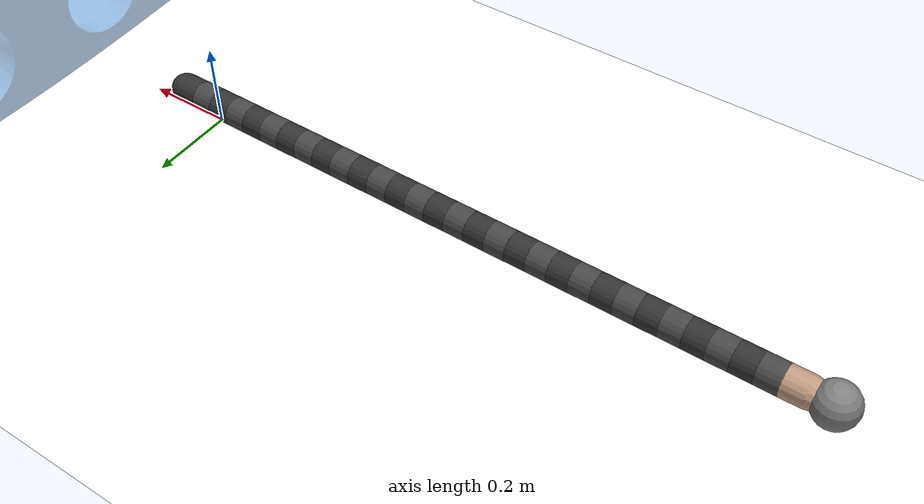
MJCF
<mujoco>
    <!-- === Configuration parameter stuff, default values === -->
    <default>
        <default class="position">
            <position ctrllimited="true" forcelimited="false" />
        </default>
        <default class="geom0">
            <geom conaffinity="0" contype="1" friction="0 0.0 0.0" margin="0.001" rgba="0.75 0.6 0.5 1" solimp="0.95 0.95 0.01" solref="0.008 1" />
        </default>
        <default class="link">
            <joint armature="0.1" damping="5" limited="true" stiffness="0" />
        </default>
    </default>
    <!-- === Physical robot definitions === -->
    <worldbody>
        <body pos="0 1.00 0.50" euler="90.00 -90.00 0">
            <geom type="mesh" mesh="0_STLS_dir/CRL_Wing.stl" rgba="0.2 0.5 0.8 0.5" />
        </body>
        <light pos="0 0 10" dir="0 0 -1" castshadow="false" />
    <geom type="plane" size="100 100 0.1" friction="0 0 0" rgba="0.984 0.984 0.984 1" />
        <body name="base" pos="-1.5 0 0.05">
            <geom size="0.05" type="sphere" />
            <joint axis="1 0 0" name="sphere_velocity" pos="0 0 0" range="-200 200" type="slide" />
            <body name="base_link" pos="0.05 0 0">
                <geom class="geom0" fromto="0 0 0 0.05 0 0" size="0.035" type="capsule" />
                <joint axis="0 0 1" class="link" name="base_joint" pos="0 0 0" range="-40.5 40.5" type="hinge" />
                <body name="link_0" pos="0.05 0 0">
                    <geom fromto="0 0 0 0.05 0 0" size="0.035" type="capsule" rgba="0.274 0.274 0.274 1" friction="0 0 0" />
                    <joint axis="0 0 1" class="link" name="joint_0" pos="0 0 0" range="-40.5 40.5" type="hinge" stiffness="20" />
                    <body name="link_1" pos="0.05 0 0">
                        <geom fromto="0 0 0 0.05 0 0" size="0.035" type="capsule" rgba="0.196 0.196 0.196 1" friction="0 0 0" />
                        <joint axis="0 0 1" class="link" name="joint_1" pos="0 0 0" range="-40.5 40.5" type="hinge" stiffness="20" />
                        <body name="link_2" pos="0.05 0 0">
                            <geom fromto="0 0 0 0.05 0 0" size="0.035" type="capsule" rgba="0.274 0.274 0.274 1" friction="0 0 0" />
                            <joint axis="0 0 1" class="link" name="joint_2" pos="0 0 0" range="-40.5 40.5" type="hinge" stiffness="20" />
                            <body name="link_3" pos="0.05 0 0">
                                <geom fromto="0 0 0 0.05 0 0" size="0.035" type="capsule" rgba="0.196 0.196 0.196 1" friction="0 0 0" />
                                <joint axis="0 0 1" class="link" name="joint_3" pos="0 0 0" range="-40.5 40.5" type="hinge" stiffness="20" />
                                <body name="link_4" pos="0.05 0 0">
                                    <geom fromto="0 0 0 0.05 0 0" size="0.035" type="capsule" rgba="0.274 0.274 0.274 1" friction="0 0 0" />
                                    <joint axis="0 0 1" class="link" name="joint_4" pos="0 0 0" range="-40.5 40.5" type="hinge" stiffness="20" />
                                    <body name="link_5" pos="0.05 0 0">
                                        <geom fromto="0 0 0 0.05 0 0" size="0.035" type="capsule" rgba="0.196 0.196 0.196 1" friction="0 0 0" />
                                        <joint axis="0 0 1" class="link" name="joint_5" pos="0 0 0" range="-40.5 40.5" type="hinge" stiffness="20" />
                                        <body name="link_6" pos="0.05 0 0">
                                            <geom fromto="0 0 0 0.05 0 0" size="0.035" type="capsule" rgba="0.274 0.274 0.274 1" friction="0 0 0" />
                                            <joint axis="0 0 1" class="link" name="joint_6" pos="0 0 0" range="-40.5 40.5" type="hinge" stiffness="20" />
                                            <body name="link_7" pos="0.05 0 0">
                                                <geom fromto="0 0 0 0.05 0 0" size="0.035" type="capsule" rgba="0.196 0.196 0.196 1" friction="0 0 0" />
                                                <joint axis="0 0 1" class="link" name="joint_7" pos="0 0 0" range="-40.5 40.5" type="hinge" stiffness="20" />
                                                <body name="link_8" pos="0.05 0 0">
                                                    <geom fromto="0 0 0 0.05 0 0" size="0.035" type="capsule" rgba="0.274 0.274 0.274 1" friction="0 0 0" />
                                                    <joint axis="0 0 1" class="link" name="joint_8" pos="0 0 0" range="-40.5 40.5" type="hinge" stiffness="20" />
                                                    <body name="link_9" pos="0.05 0 0">
                                                        <geom fromto="0 0 0 0.05 0 0" size="0.035" type="capsule" rgba="0.196 0.196 0.196 1" friction="0 0 0" />
                                                        <joint axis="0 0 1" class="link" name="joint_9" pos="0 0 0" range="-40.5 40.5" type="hinge" stiffness="20" />
                                                        <body name="link_10" pos="0.05 0 0">
                                                            <geom fromto="0 0 0 0.05 0 0" size="0.035" type="capsule" rgba="0.274 0.274 0.274 1" friction="0 0 0" />
                                                            <joint axis="0 0 1" class="link" name="joint_10" pos="0 0 0" range="-40.5 40.5" type="hinge" stiffness="20" />
                                                            <body name="link_11" pos="0.05 0 0">
                                                                <geom fromto="0 0 0 0.05 0 0" size="0.035" type="capsule" rgba="0.196 0.196 0.196 1" friction="0 0 0" />
                                                                <joint axis="0 0 1" class="link" name="joint_11" pos="0 0 0" range="-40.5 40.5" type="hinge" stiffness="20" />
                                                                <body name="link_12" pos="0.05 0 0">
                                                                    <geom fromto="0 0 0 0.05 0 0" size="0.035" type="capsule" rgba="0.274 0.274 0.274 1" friction="0 0 0" />
                                                                    <joint axis="0 0 1" class="link" name="joint_12" pos="0 0 0" range="-40.5 40.5" type="hinge" stiffness="20" />
                                                                    <body name="link_13" pos="0.05 0 0">
                                                                        <geom fromto="0 0 0 0.05 0 0" size="0.035" type="capsule" rgba="0.196 0.196 0.196 1" friction="0 0 0" />
                                                                        <joint axis="0 0 1" class="link" name="joint_13" pos="0 0 0" range="-40.5 40.5" type="hinge" stiffness="20" />
                                                                        <body name="link_14" pos="0.05 0 0">
                                                                            <geom fromto="0 0 0 0.05 0 0" size="0.035" type="capsule" rgba="0.274 0.274 0.274 1" friction="0 0 0" />
                                                                            <joint axis="0 0 1" class="link" name="joint_14" pos="0 0 0" range="-40.5 40.5" type="hinge" stiffness="20" />
                                                                            <body name="link_15" pos="0.05 0 0">
                                                                                <geom fromto="0 0 0 0.05 0 0" size="0.035" type="capsule" rgba="0.196 0.196 0.196 1" friction="0 0 0" />
                                                                                <joint axis="0 0 1" class="link" name="joint_15" pos="0 0 0" range="-40.5 40.5" type="hinge" stiffness="20" />
                                                                                <body name="link_16" pos="0.05 0 0">
                                                                                    <geom fromto="0 0 0 0.05 0 0" size="0.035" type="capsule" rgba="0.274 0.274 0.274 1" friction="0 0 0" />
                                                                                    <joint axis="0 0 1" class="link" name="joint_16" pos="0 0 0" range="-40.5 40.5" type="hinge" stiffness="20" />
                                                                                    <body name="link_17" pos="0.05 0 0">
                                                                                        <geom fromto="0 0 0 0.05 0 0" size="0.035" type="capsule" rgba="0.196 0.196 0.196 1" friction="0 0 0" />
                                                                                        <joint axis="0 0 1" class="link" name="joint_17" pos="0 0 0" range="-40.5 40.5" type="hinge" stiffness="20" />
                                                                                        <body name="link_18" pos="0.05 0 0">
                                                                                            <geom fromto="0 0 0 0.05 0 0" size="0.035" type="capsule" rgba="0.274 0.274 0.274 1" friction="0 0 0" />
                                                                                            <joint axis="0 0 1" class="link" name="joint_18" pos="0 0 0" range="-40.5 40.5" type="hinge" stiffness="20" />
                                                                                            <body name="link_19" pos="0.05 0 0">
                                                                                                <geom fromto="0 0 0 0.05 0 0" size="0.035" type="capsule" rgba="0.196 0.196 0.196 1" friction="0 0 0" />
                                                                                                <joint axis="0 0 1" class="link" name="joint_19" pos="0 0 0" range="-40.5 40.5" type="hinge" stiffness="20" />
                                                                                                <body name="link_20" pos="0.05 0 0">
                                                                                                    <geom fromto="0 0 0 0.05 0 0" size="0.035" type="capsule" rgba="0.274 0.274 0.274 1" friction="0 0 0" />
                                                                                                    <joint axis="0 0 1" class="link" name="joint_20" pos="0 0 0" range="-40.5 40.5" type="hinge" stiffness="20" />
                                                                                                    <body name="link_21" pos="0.05 0 0">
                                                                                                        <geom fromto="0 0 0 0.05 0 0" size="0.035" type="capsule" rgba="0.196 0.196 0.196 1" friction="0 0 0" />
                                                                                                        <joint axis="0 0 1" class="link" name="joint_21" pos="0 0 0" range="-40.5 40.5" type="hinge" stiffness="20" />
                                                                                                        <body name="link_22" pos="0.05 0 0">
                                                                                                            <geom fromto="0 0 0 0.05 0 0" size="0.035" type="capsule" rgba="0.274 0.274 0.274 1" friction="0 0 0" />
                                                                                                            <joint axis="0 0 1" class="link" name="joint_22" pos="0 0 0" range="-40.5 40.5" type="hinge" stiffness="20" />
                                                                                                            <body name="link_23" pos="0.05 0 0">
                                                                                                                <geom fromto="0 0 0 0.05 0 0" size="0.035" type="capsule" rgba="0.196 0.196 0.196 1" friction="0 0 0" />
                                                                                                                <joint axis="0 0 1" class="link" name="joint_23" pos="0 0 0" range="-40.5 40.5" type="hinge" stiffness="20" />
                                                                                                                <body name="link_24" pos="0.05 0 0">
                                                                                                                    <geom fromto="0 0 0 0.05 0 0" size="0.035" type="capsule" rgba="0.274 0.274 0.274 1" friction="0 0 0" />
                                                                                                                    <joint axis="0 0 1" class="link" name="joint_24" pos="0 0 0" range="-40.5 40.5" type="hinge" stiffness="20" />
                                                                                                                    <body name="link_25" pos="0.05 0 0">
                                                                                                                        <geom fromto="0 0 0 0.05 0 0" size="0.035" type="capsule" rgba="0.196 0.196 0.196 1" friction="0 0 0" />
                                                                                                                        <joint axis="0 0 1" class="link" name="joint_25" pos="0 0 0" range="-40.5 40.5" type="hinge" stiffness="20" />
                                                                                                                        <body name="link_26" pos="0.05 0 0">
                                                                                                                            <geom fromto="0 0 0 0.05 0 0" size="0.035" type="capsule" rgba="0.274 0.274 0.274 1" friction="0 0 0" />
                                                                                                                            <joint axis="0 0 1" class="link" name="joint_26" pos="0 0 0" range="-40.5 40.5" type="hinge" stiffness="20" />
                                                                                                                            <body name="link_27" pos="0.05 0 0">
                                                                                                                                <geom fromto="0 0 0 0.05 0 0" size="0.035" type="capsule" rgba="0.196 0.196 0.196 1" friction="0 0 0" />
                                                                                                                                <joint axis="0 0 1" class="link" name="joint_27" pos="0 0 0" range="-40.5 40.5" type="hinge" stiffness="20" />
                                                                                                                                <body name="link_28" pos="0.05 0 0">
                                                                                                                                    <geom fromto="0 0 0 0.05 0 0" size="0.035" type="capsule" rgba="0.274 0.274 0.274 1" friction="0 0 0" />
                                                                                                                                    <joint axis="0 0 1" class="link" name="joint_28" pos="0 0 0" range="-40.5 40.5" type="hinge" stiffness="20" />
                                                                                                                                    <body name="link_29" pos="0.05 0 0">
                                                                                                                                        <geom fromto="0 0 0 0.05 0 0" size="0.035" type="capsule" rgba="0.196 0.196 0.196 1" friction="0 0 0" />
                                                                                                                                        <joint axis="0 0 1" class="link" name="joint_29" pos="0 0 0" range="-40.5 40.5" type="hinge" stiffness="20" />
                                                                                                                                    </body>
                                                                                                                                </body>
                                                                                                                            </body>
                                                                                                                        </body>
                                                                                                                    </body>
                                                                                                                </body>
                                                                                                            </body>
                                                                                                        </body>
                                                                                                    </body>
                                                                                                </body>
                                                                                            </body>
                                                                                        </body>
                                                                                    </body>
                                                                                </body>
                                                                            </body>
                                                                        </body>
                                                                    </body>
                                                                </body>
                                                            </body>
                                                        </body>
                                                    </body>
                                                </body>
                                            </body>
                                        </body>
                                    </body>
                                </body>
                            </body>
                        </body>
                    </body>
                </body>
            </body>
        </body>
    </worldbody>
    <asset>
        <mesh name="0_STLS_dir/CRL_Wing.stl" content_type="model/stl" file="STLS_dir/CRL_Wing.stl" scale="0.005 0.005 0.005" />
    </asset>
    <actuator>
        <velocity ctrlrange="-4 4" joint="sphere_velocity" name="sphere_velocity_act" />
        <motor class="position" ctrlrange="-40.5 40.5" joint="base_joint" name="act_base_joint" />
        <motor class="position" ctrlrange="-40.5 40.5" joint="joint_0" name="act_joint_0" />
        <motor class="position" ctrlrange="-40.5 40.5" joint="joint_1" name="act_joint_1" />
        <motor class="position" ctrlrange="-40.5 40.5" joint="joint_2" name="act_joint_2" />
        <motor class="position" ctrlrange="-40.5 40.5" joint="joint_3" name="act_joint_3" />
        <motor class="position" ctrlrange="-40.5 40.5" joint="joint_4" name="act_joint_4" />
        <motor class="position" ctrlrange="-40.5 40.5" joint="joint_5" name="act_joint_5" />
        <motor class="position" ctrlrange="-40.5 40.5" joint="joint_6" name="act_joint_6" />
        <motor class="position" ctrlrange="-40.5 40.5" joint="joint_7" name="act_joint_7" />
        <motor class="position" ctrlrange="-40.5 40.5" joint="joint_8" name="act_joint_8" />
        <motor class="position" ctrlrange="-40.5 40.5" joint="joint_9" name="act_joint_9" />
        <motor class="position" ctrlrange="-40.5 40.5" joint="joint_10" name="act_joint_10" />
        <motor class="position" ctrlrange="-40.5 40.5" joint="joint_11" name="act_joint_11" />
        <motor class="position" ctrlrange="-40.5 40.5" joint="joint_12" name="act_joint_12" />
        <motor class="position" ctrlrange="-40.5 40.5" joint="joint_13" name="act_joint_13" />
        <motor class="position" ctrlrange="-40.5 40.5" joint="joint_14" name="act_joint_14" />
        <motor class="position" ctrlrange="-40.5 40.5" joint="joint_15" name="act_joint_15" />
        <motor class="position" ctrlrange="-40.5 40.5" joint="joint_16" name="act_joint_16" />
        <motor class="position" ctrlrange="-40.5 40.5" joint="joint_17" name="act_joint_17" />
        <motor class="position" ctrlrange="-40.5 40.5" joint="joint_18" name="act_joint_18" />
        <motor class="position" ctrlrange="-40.5 40.5" joint="joint_19" name="act_joint_19" />
        <motor class="position" ctrlrange="-40.5 40.5" joint="joint_20" name="act_joint_20" />
        <motor class="position" ctrlrange="-40.5 40.5" joint="joint_21" name="act_joint_21" />
        <motor class="position" ctrlrange="-40.5 40.5" joint="joint_22" name="act_joint_22" />
        <motor class="position" ctrlrange="-40.5 40.5" joint="joint_23" name="act_joint_23" />
        <motor class="position" ctrlrange="-40.5 40.5" joint="joint_24" name="act_joint_24" />
        <motor class="position" ctrlrange="-40.5 40.5" joint="joint_25" name="act_joint_25" />
        <motor class="position" ctrlrange="-40.5 40.5" joint="joint_26" name="act_joint_26" />
        <motor class="position" ctrlrange="-40.5 40.5" joint="joint_27" name="act_joint_27" />
        <motor class="position" ctrlrange="-40.5 40.5" joint="joint_28" name="act_joint_28" />
        <motor class="position" ctrlrange="-40.5 40.5" joint="joint_29" name="act_joint_29" />
    </actuator>
    <asset />
    <option gravity="0 0 -1.8" />
</mujoco>
